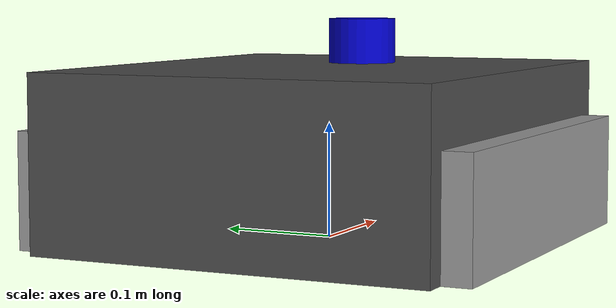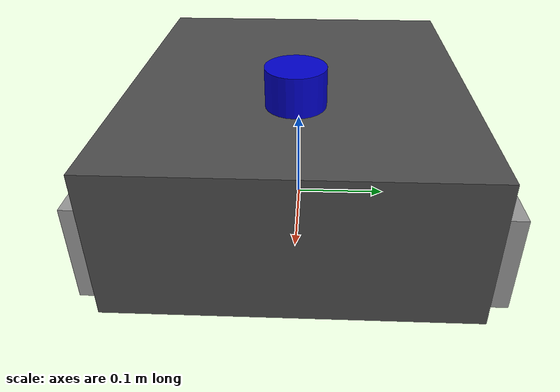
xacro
<?xml version="1.0"?>
<robot xmlns:xacro="http://ros.org/wiki/xacro" name="mower">
  <!-- Vineyard Mower Robot URDF                                     -->
  <!-- All dimensions sourced from existing codebase:                -->
  <!--   - Wheel separation: embedded/arduino/src/motor_control.h   -->
  <!--   - LiDAR position: mower_bringup/launch/lidar.launch.py     -->

  <!-- Properties from existing codebase - DO NOT CHANGE -->
  <xacro:property name="wheel_separation" value="0.30"/>  <!-- motor_control.h:22 -->
  <xacro:property name="wheel_diameter" value="0.10"/>    <!-- motor_control.h:25 -->

  <!-- Chassis dimensions (estimated based on tracked robot form factor) -->
  <xacro:property name="chassis_length" value="0.40"/>
  <xacro:property name="chassis_width" value="0.35"/>
  <xacro:property name="chassis_height" value="0.15"/>

  <!-- LiDAR position from lidar.launch.py:62 - DO NOT CHANGE -->
  <xacro:property name="laser_x" value="0.07"/>
  <xacro:property name="laser_y" value="0.0"/>
  <xacro:property name="laser_z" value="0.17"/>

  <!-- IMU position (placeholder - center of chassis, slightly elevated) -->
  <xacro:property name="imu_x" value="0.0"/>
  <xacro:property name="imu_y" value="0.0"/>
  <xacro:property name="imu_z" value="0.05"/>

  <!-- Material definitions -->
  <material name="dark_grey">
    <color rgba="0.3 0.3 0.3 1.0"/>
  </material>
  <material name="light_grey">
    <color rgba="0.6 0.6 0.6 1.0"/>
  </material>
  <material name="blue">
    <color rgba="0.0 0.0 0.8 1.0"/>
  </material>

  <!-- Base Link - Center of robot footprint                         -->
  <link name="base_link">
    <visual>
      <origin xyz="0 0 ${chassis_height/2}" rpy="0 0 0"/>
      <geometry>
        <box size="${chassis_length} ${chassis_width} ${chassis_height}"/>
      </geometry>
      <material name="dark_grey"/>
    </visual>
    <collision>
      <origin xyz="0 0 ${chassis_height/2}" rpy="0 0 0"/>
      <geometry>
        <box size="${chassis_length} ${chassis_width} ${chassis_height}"/>
      </geometry>
    </collision>
    <inertial>
      <origin xyz="0 0 ${chassis_height/2}" rpy="0 0 0"/>
      <mass value="20.0"/>
      <inertia ixx="0.5" ixy="0" ixz="0" iyy="0.5" iyz="0" izz="0.5"/>
    </inertial>
  </link>

  <!-- Base Footprint - Ground plane reference for Nav2              -->
  <link name="base_footprint"/>
  <joint name="base_footprint_joint" type="fixed">
    <parent link="base_link"/>
    <child link="base_footprint"/>
    <origin xyz="0 0 0" rpy="0 0 0"/>
  </joint>

  <!-- Laser Frame - LiDAR sensor position                          -->
  <!-- Position from lidar.launch.py static TF publisher             -->
  <link name="laser_frame">
    <visual>
      <geometry>
        <cylinder radius="0.03" length="0.04"/>
      </geometry>
      <material name="blue"/>
    </visual>
    <collision>
      <geometry>
        <cylinder radius="0.03" length="0.04"/>
      </geometry>
    </collision>
  </link>
  <joint name="laser_joint" type="fixed">
    <parent link="base_link"/>
    <child link="laser_frame"/>
    <origin xyz="${laser_x} ${laser_y} ${laser_z}" rpy="0 0 0"/>
  </joint>

  <!-- IMU Link - IMU sensor position (placeholder)                  -->
  <!-- Will be updated when IMU is physically integrated             -->
  <link name="imu_link"/>
  <joint name="imu_joint" type="fixed">
    <parent link="base_link"/>
    <child link="imu_link"/>
    <origin xyz="${imu_x} ${imu_y} ${imu_z}" rpy="0 0 0"/>
  </joint>

  <!-- Track Links (visual representation of tracked drive)          -->
  <!-- Left Track -->
  <link name="left_track">
    <visual>
      <geometry>
        <box size="${chassis_length * 0.9} ${wheel_diameter} ${wheel_diameter}"/>
      </geometry>
      <material name="light_grey"/>
    </visual>
  </link>
  <joint name="left_track_joint" type="fixed">
    <parent link="base_link"/>
    <child link="left_track"/>
    <origin xyz="0 ${wheel_separation/2} ${wheel_diameter/2}" rpy="0 0 0"/>
  </joint>

  <!-- Right Track -->
  <link name="right_track">
    <visual>
      <geometry>
        <box size="${chassis_length * 0.9} ${wheel_diameter} ${wheel_diameter}"/>
      </geometry>
      <material name="light_grey"/>
    </visual>
  </link>
  <joint name="right_track_joint" type="fixed">
    <parent link="base_link"/>
    <child link="right_track"/>
    <origin xyz="0 -${wheel_separation/2} ${wheel_diameter/2}" rpy="0 0 0"/>
  </joint>

</robot>
